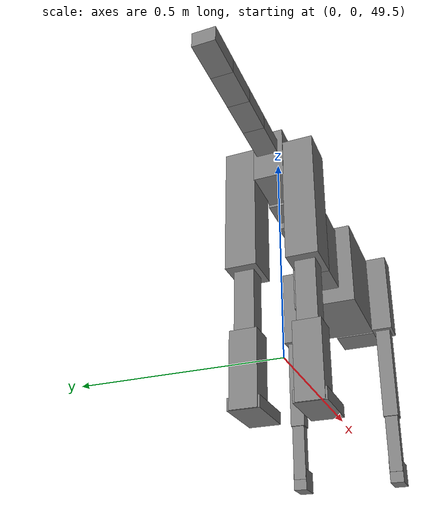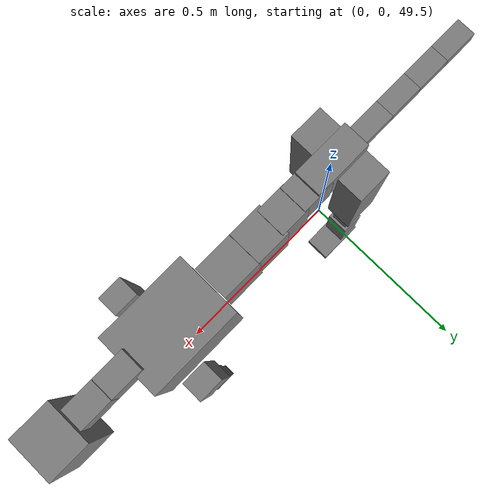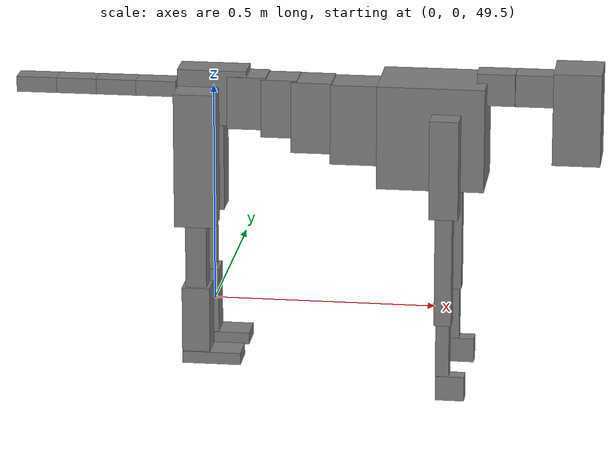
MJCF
<mujoco model="dog">

    <default>
        <joint armature="0.02" stiffness="1" damping="0.2" limited="true"/>
        <geom condim="3" friction="1 0.05 0.05" margin="0.01"/>
        <motor ctrllimited="true" ctrlrange="-1.0 1.0" forcelimited="true" gear="50"/>
    </default>

    <compiler inertiafromgeom="true" angle="radian"/>

    <option timestep="0.016" iterations="50" tolerance="1e-10" solver="Newton" jacobian="dense" cone="pyramidal"/>

    <size nconmax="20000" njmax="60000" nstack="5000000"/>
    <visual>
        <map force="0.1" zfar="30"/>
        <rgba haze="0.15 0.25 0.35 1"/>
        <quality shadowsize="2048"/>
        <global offwidth="800" offheight="800"/>
    </visual>

    <asset>
        <texture type="skybox" builtin="gradient" rgb1="0.3 0.5 0.7" rgb2="0 0 0" width="512" height="512"/>
        <texture name="texplane" type="2d" builtin="checker" rgb1=".2 .3 .4" rgb2=".1 0.15 0.2" width="512" height="512"
                 mark="cross" markrgb=".8 .8 .8"/>
        <texture name="texgeom" type="cube" builtin="flat" mark="cross" width="127" height="1278" rgb1="0.8 0.6 0.4"
                 rgb2="0.8 0.6 0.4" markrgb="1 1 1" random="0.01"/>

        <material name="matplane" reflectance="0.3" texture="texplane" texrepeat="1 1" texuniform="true"/>
        <material name="matgeom" texture="texgeom" texuniform="true" rgba="0.8 0.6 .4 1"/>
    </asset>

    <worldbody>
        <geom name="floor" pos="0 0 0" size="0 0 .25" type="plane" material="matplane" condim="3"/>

        <light directional="false" diffuse=".2 .2 .2" specular="0 0 0" pos="0 0 5" dir="0 0 -1" castshadow="false"/>
        <light mode="targetbodycom" target="torso" directional="false" diffuse=".8 .8 .8" specular="0.3 0.3 0.3"
               pos="0 0 4.0" dir="0 0 -1"/>

        <body name="root" pos="0 0 50">
            <freejoint name="root_1"/>
            <geom type="box" pos="0 0 -0.02" size="0.0774  0.0358  0.063" density="2030"/>

            <body name="spine1" pos="0.054 0 0">
                <joint name="spine1_y" axis="0 1 0" range="0 0.7" limited="true"/>
                <geom type="box" pos="0.02375 0 -0.03" size="0.04375  0.0375  0.05985" density="2030"/>

                <body name="spine2" pos="0.0612 0 0">
                    <joint name="spine2_y" axis="0 1 0" range="-0.15 0.15" limited="true"/>
                    <geom type="box" pos="0.03555  0  -0.04" size="0.04055  0.039  0.06615" density="2030"/>

                    <body name="spine3" pos="0.0730 0 0">
                        <joint name="spine3_y" axis="0 1 0" range="-0.15 0.15" limited="true"/>
                        <geom type="box" pos="0.03555  0  -0.057" size="0.04555  0.0445  0.081" density="2030"/>

                        <body name="spine4" pos="0.0780 0 0">
                            <joint name="spine4_y" axis="0 1 0" range="-0.15 0.15" limited="true"/>
                            <geom type="box" pos="0.05265  0  -0.07" size="0.05265  0.045  0.09135" density="2030"/>

                            <body name="torso" pos="0.1082 0 0">
                                <joint name="torso_y" axis="0 1 0" range="-0.15 0.15" limited="true"/>
                                <geom type="box" pos="0.11925  0  -0.085" size="0.11925  0.085  0.11745"
                                      density="2030"/>

                                <body name="neck1" pos="0.2160  0   0.0180">
                                    <joint name="neck1_y" axis="0 1 0" range="-1.2  -1" limited="true"/>
                                    <geom type="box" pos="0.0423  0  0" size="0.0423  0.03  0.036" density="2325"/>

                                    <body name="neck2" pos="0.0853  0  0">
                                        <joint name="neck2_y" axis="0 1 0" range="0.1  0" limited="true"/>
                                        <geom type="box" pos="0.0423  0  0" size="0.0423  0.03  0.036" density="2325"/>

                                        <body name="head" pos="0.0853  0  0">
                                            <joint name="head_y" axis="0 1 0" range="-0.3  -0.2" limited="true"/>
                                            <geom type="box" pos="0.0531  0  -0.055" size="0.0531  0.06  0.1044"
                                                  density="4030"/>

                                        </body>
                                    </body>
                                </body>

                                <body name="front_shoulder" pos="0.156  0   -0.0480">
                                    <joint name="front_shoulder_y" axis="0 1 0" range="-1 1.5" limited="true"/>
                                    <geom type="box" pos="0 0.13 -0.0859" size="0.0322  0.0275  0.1125" density="1158"/>
                                    <geom type="box" pos="0 -0.13 -0.0859" size="0.0322  0.0275  0.1125"
                                          density="1158"/>

                                    <body name="front_elbow" pos="0  0  -0.1718">
                                        <joint name="front_elbow_y" axis="0 1 0" range="-2 0" limited="true"/>
                                        <geom type="box" pos="0 0.13 -0.1376" size="0.0191  0.0195  0.1376"
                                              density="1081"/>
                                        <geom type="box" pos="0 -0.13 -0.1376" size="0.0191  0.0195  0.1376"
                                              density="1081"/>

                                        <body name="front_wrist" pos="0  0  -0.2752">
                                            <joint name="front_wrist_y" axis="0 1 0" range="-0.2 0" limited="true"/>
                                            <geom type="box" pos="0 0.13 -0.0674" size="0.0151  0.0168  0.0805"
                                                  density="1664"/>
                                            <geom type="box" pos="0 -0.13 -0.0674" size="0.0151  0.0168  0.0805"
                                                  density="1664"/>

                                            <body name="front_finger_end" pos="0  0  -0.1347">
                                                <joint name="front_finger_y" axis="0 1 0" range="-0.4 1"
                                                       limited="true"/>
                                                <geom type="box" pos="0.0175  0.13  -0.0131"
                                                      size="0.0320  0.0175  0.0281" density="1515"/>
                                                <geom type="box" pos="0.0175  -0.13  -0.0131"
                                                      size="0.0320  0.0175  0.0281" density="1515"/>

                                            </body>

                                        </body>
                                    </body>
                                </body>

                            </body>
                        </body>
                    </body>
                </body>
            </body>

            <body name="back_hip" pos="-0.03 0 -0.018">
                <joint name="back_hip_y" axis="0 1 0" range="-1.5 0.3" limited="true"/>
                <geom type="box" pos="0 0.07 -0.1307" size="0.0460  0.0361  0.1535" density="1154"/>
                <geom type="box" pos="0 -0.07 -0.1307" size="0.0460  0.0361  0.1535" density="1154"/>

                <body name="back_knee" pos="0  0  -0.2614">
                    <joint name="back_knee_y" axis="0 1 0" range="0 2.8" limited="true"/>
                    <geom type="box" pos="0 0.07 -0.0893" size="0.0235  0.0232  0.1048" density="1227"/>
                    <geom type="box" pos="0 -0.07 -0.0893" size="0.0235  0.0232  0.1048" density="1227"/>

                    <body name="back_ankle" pos="0  0  -0.1785">
                        <joint name="back_ankle_y" axis="0 1 0" range="-2.2 0" limited="true"/>
                        <geom type="box" pos="0 0.07 -0.0763" size="0.0313  0.0313  0.0875" density="1284"/>
                        <geom type="box" pos="0 -0.07 -0.0763" size="0.0313  0.0313  0.0875" density="1284"/>

                        <body name="back_toe_end" pos="0  0  -0.1525">
                            <joint name="back_toe_y" axis="0 1 0" range="-0.4 1" limited="true"/>
                            <geom type="box" pos="0.0358  0.07  0.0014" size="0.0656  0.0358  0.0136" density="1515"/>
                            <geom type="box" pos="0.0358  -0.07  0.0014" size="0.0656  0.0358  0.0136" density="1515"/>

                        </body>
                    </body>
                </body>
            </body>

            <body name="tail1" pos="-0.074 0 -0.006">
                <joint name="tail1_y" axis="0 1 0" range="-0.2 0.2" limited="true"/>
                <geom type="box" pos="-0.0536  0  0" size="0.045  0.025  0.0175" density="1587"/>

                <body name="tail2" pos="-0.09 0 0">
                    <joint name="tail2_y" axis="0 1 0" range="-0.2 0.2" limited="true"/>
                    <geom type="box" pos="-0.0536  0  0" size="0.045  0.025  0.0175" density="1587"/>

                    <body name="tail3" pos="-0.09 0 0">
                        <joint name="tail3_y" axis="0 1 0" range="-0.2 0.2" limited="true"/>
                        <geom type="box" pos="-0.0536  0  0" size="0.045  0.025  0.0175" density="1587"/>

                        <body name="tail4" pos="-0.09 0 0">
                            <joint name="tail4_y" axis="0 1 0" range="-0.2 0.2" limited="true"/>
                            <geom type="box" pos="-0.0536  0  0" size="0.045  0.025  0.0175" density="1587"/>

                        </body>
                    </body>
                </body>
            </body>
        </body>
    </worldbody>

    <actuator>
        <motor joint="spine1_y" forcerange="-150 150     "/>
        <motor joint="spine2_y" forcerange="-150 150     "/>
        <motor joint="spine3_y" forcerange="-150 150     "/>
        <motor joint="spine4_y" forcerange="-150 150     "/>
        <motor joint="torso_y" forcerange="-150 150     "/>
        <motor joint="neck1_y" forcerange="-100 100       "/>
        <motor joint="neck2_y" forcerange="-100 100       "/>
        <motor joint="head_y" forcerange="-150 150       "/>
        <motor joint="front_shoulder_y" forcerange="-181.63 101.93"/>
        <motor joint="front_elbow_y" forcerange="-110.86 131.02"/>
        <motor joint="front_wrist_y" forcerange="-55.50 78.88"/>
        <motor joint="front_finger_y" forcerange="-28.49 24.61"/>
        <motor joint="back_hip_y" forcerange="-398.75 282.30"/>
        <motor joint="back_knee_y" forcerange="-298.32 238.68"/>
        <motor joint="back_angle_y" forcerange="-158.56 242.99"/>
        <motor joint="back_toe_y" forcerange="-120.41 85.88"/>
        <motor joint="tail1_y" forcerange="-50 50     "/>
        <motor joint="tail2_y" forcerange="-50 50     "/>
        <motor joint="tail3_y" forcerange="-50 50     "/>
        <motor joint="tail4_y" forcerange="-50 50     "/>
    </actuator>
</mujoco>
